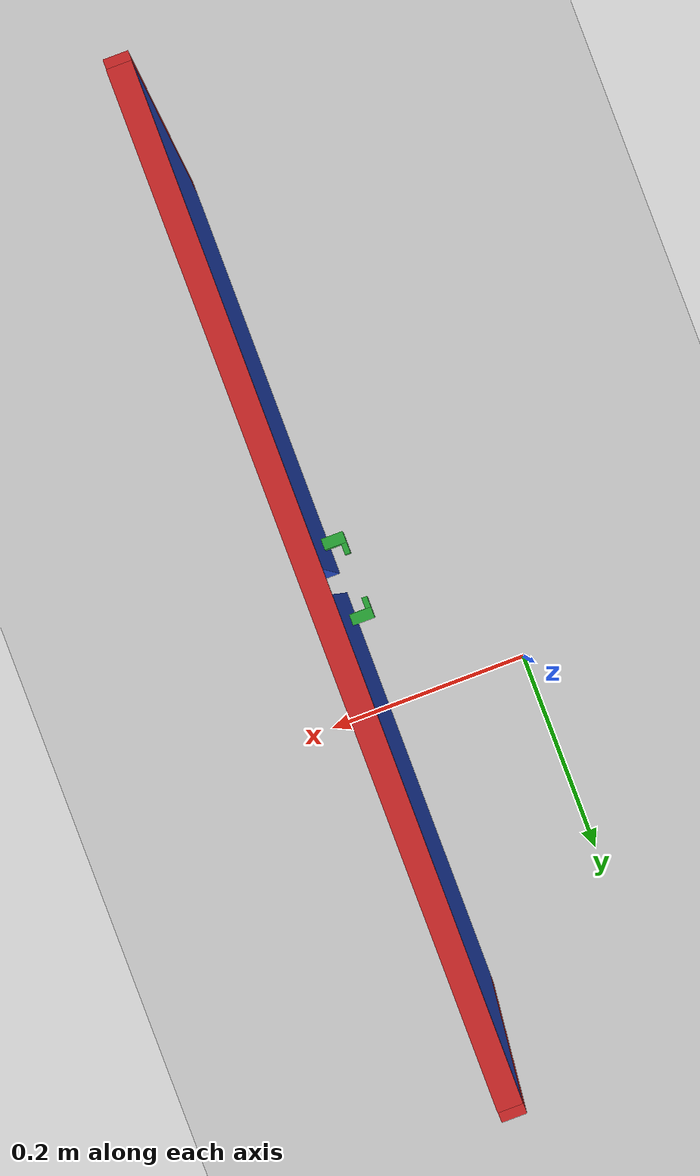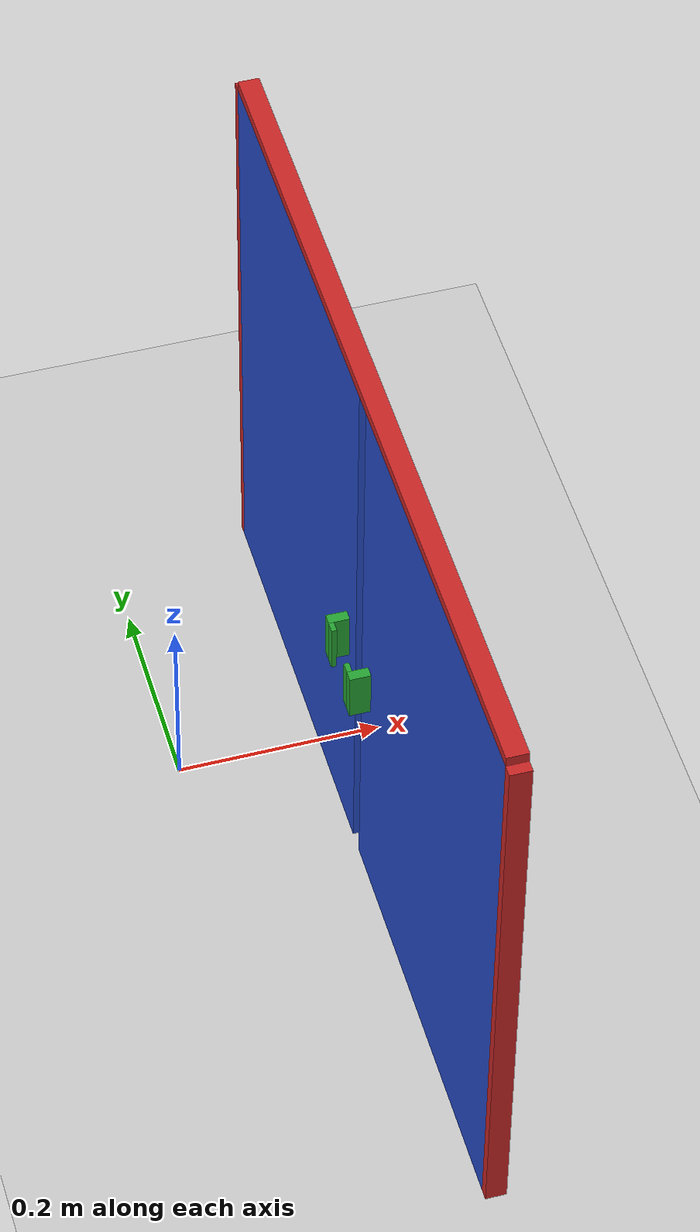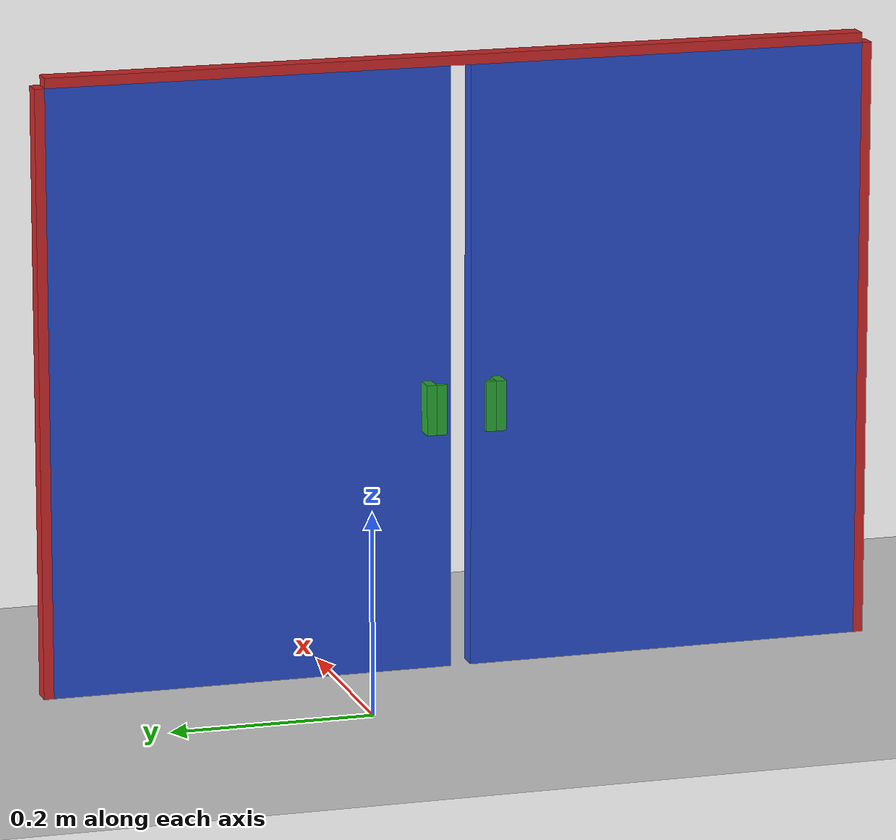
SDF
<sdf version="1.4">
 <world name="default">
  <light name="sun" type="directional">
   <pose>0.000000 0.000000 10.000000 0.000000 0.000000 0.000000</pose>
   <diffuse>0.800000 0.800000 0.800000 1.000000</diffuse>
   <specular>0.100000 0.100000 0.100000 1.000000</specular>
   <attenuation>
    <range>1000.000000</range>
    <constant>0.900000</constant>
    <linear>0.010000</linear>
    <quadratic>0.001000</quadratic>
   </attenuation>
   <direction>-0.500000 0.500000 -1.000000</direction>
  </light>
  <model name="ground_plane">
   <static>1</static>
   <link name="link">
    <collision name="collision">
     <geometry>
      <plane><normal>0.000000 0.000000 1.000000</normal><size>100.000000 100.000000</size></plane>
     </geometry>
     <surface><friction><ode><mu>100.000000</mu><mu2>50.000000</mu2></ode></friction></surface>
    </collision>
    <visual name="visual">
     <cast_shadows>0</cast_shadows>
     <geometry>
      <plane><normal>0.000000 0.000000 1.000000</normal><size>100.000000 100.000000</size></plane>
     </geometry>
     <material>
      <script><uri>file://media/materials/scripts/gazebo.material</uri><name>Gazebo/Grey</name></script>
     </material>
    </visual>
    <velocity_decay><linear>0.000000</linear><angular>0.000000</angular></velocity_decay>
   </link>
  </model>
  <physics type="ode">
   <max_step_size>0.001000</max_step_size>
   <real_time_factor>1.000000</real_time_factor>
   <real_time_update_rate>1000.000000</real_time_update_rate>
   <gravity>0.000000 0.000000 -9.800000</gravity>
  </physics>
  <scene>
   <ambient>0.200000 0.200000 0.200000 1.000000</ambient>
   <background>0.700000 0.700000 0.700000 1.000000</background>
   <shadows>1</shadows>
  </scene>
  <model name="my_doubleDoor">
   <link name="door_1">
    <pose>0.000000 -0.210000 0.300000 0.000000 0.000000 0.000000</pose>
    <inertial>
     <mass>0.020000</mass>
     <inertia>
      <ixx>1.000000</ixx>
      <ixy>0.000000</ixy>
      <ixz>0.000000</ixz>
      <iyy>1.000000</iyy>
      <iyz>0.000000</iyz>
      <izz>1.000000</izz>
     </inertia>
    </inertial>
    <visual name="vis_door_1">
     <geometry><box><size>0.020000 0.400000 0.600000</size></box></geometry>
     <material>
      <script><uri>file://media/materials/scripts/gazebo.material</uri><name>Gazebo/Blue</name></script>
     </material>
    </visual>
    <collision name="col_door_1">
     <geometry><box><size>0.020000 0.400000 0.600000</size></box></geometry>
    </collision>
    <visual name="vis_handle_1">
     <pose>0.020000 0.175000 -0.035000 0.000000 0.000000 0.000000</pose>
     <geometry><box><size>0.020000 0.010000 0.050000</size></box></geometry>
     <material>
      <script><uri>file://media/materials/scripts/gazebo.material</uri><name>Gazebo/Green</name></script>
     </material>
    </visual>
    <collision name="col_handle_1">
     <pose>0.020000 0.175000 -0.035000 0.000000 0.000000 0.000000</pose>
     <geometry><box><size>0.020000 0.010000 0.050000</size></box></geometry>
    </collision>
    <visual name="vis_handle_ext_1">
     <pose>0.027500 0.185000 -0.035000 0.000000 0.000000 0.000000</pose>
     <geometry><box><size>0.005000 0.010000 0.050000</size></box></geometry>
     <material>
      <script><uri>file://media/materials/scripts/gazebo.material</uri><name>Gazebo/Green</name></script>
     </material>
    </visual>
    <collision name="col_handle_ext_1">
     <pose>0.027500 0.185000 -0.035000 0.000000 0.000000 0.000000</pose>
     <geometry><box><size>0.005000 0.010000 0.050000</size></box></geometry>
    </collision>
    <velocity_decay><linear>0.000000</linear><angular>0.000000</angular></velocity_decay>
   </link>
   <link name="door_2">
    <pose>0.000000 0.210000 0.300000 0.000000 0.000000 0.000000</pose>
    <inertial>
     <mass>0.020000</mass>
     <inertia>
      <ixx>1.000000</ixx>
      <ixy>0.000000</ixy>
      <ixz>0.000000</ixz>
      <iyy>1.000000</iyy>
      <iyz>0.000000</iyz>
      <izz>1.000000</izz>
     </inertia>
    </inertial>
    <visual name="vis_door_2">
     <geometry><box><size>0.020000 0.400000 0.600000</size></box></geometry>
     <material>
      <script><uri>file://media/materials/scripts/gazebo.material</uri><name>Gazebo/Blue</name></script>
     </material>
    </visual>
    <collision name="col_door_2">
     <geometry><box><size>0.020000 0.400000 0.600000</size></box></geometry>
    </collision>
    <visual name="vis_handle_2">
     <pose>0.020000 -0.175000 -0.035000 0.000000 0.000000 0.000000</pose>
     <geometry><box><size>0.020000 0.010000 0.050000</size></box></geometry>
     <material>
      <script><uri>file://media/materials/scripts/gazebo.material</uri><name>Gazebo/Green</name></script>
     </material>
    </visual>
    <collision name="col_handle_2">
     <pose>0.020000 -0.175000 -0.035000 0.000000 0.000000 0.000000</pose>
     <geometry><box><size>0.020000 0.010000 0.050000</size></box></geometry>
    </collision>
    <visual name="vis_handle_ext_2">
     <pose>0.027500 -0.185000 -0.035000 0.000000 0.000000 0.000000</pose>
     <geometry><box><size>0.005000 0.010000 0.050000</size></box></geometry>
     <material>
      <script><uri>file://media/materials/scripts/gazebo.material</uri><name>Gazebo/Green</name></script>
     </material>
    </visual>
    <collision name="col_handle_ext_2">
     <pose>0.027500 -0.185000 -0.035000 0.000000 0.000000 0.000000</pose>
     <geometry><box><size>0.005000 0.010000 0.050000</size></box></geometry>
    </collision>
    <velocity_decay><linear>0.000000</linear><angular>0.000000</angular></velocity_decay>
   </link>
   <link name="hindge">
    <inertial>
     <mass>250.000000</mass>
     <inertia>
      <ixx>1.000000</ixx>
      <ixy>0.000000</ixy>
      <ixz>0.000000</ixz>
      <iyy>1.000000</iyy>
      <iyz>0.000000</iyz>
      <izz>1.000000</izz>
     </inertia>
    </inertial>
    <visual name="vis_hindge">
     <pose>0.000000 -0.415000 0.300000 0.000000 0.000000 0.000000</pose>
     <geometry><box><size>0.020000 0.010000 0.600000</size></box></geometry>
     <material>
      <script><uri>file://media/materials/scripts/gazebo.material</uri><name>Gazebo/Red</name></script>
     </material>
    </visual>
    <collision name="col_hindge">
     <pose>0.000000 -0.415000 0.300000 0.000000 0.000000 0.000000</pose>
     <geometry><box><size>0.020000 0.010000 0.600000</size></box></geometry>
    </collision>
    <visual name="vis_hindge_rightFrame">
     <pose>0.000000 0.415000 0.300000 0.000000 0.000000 0.000000</pose>
     <geometry><box><size>0.020000 0.010000 0.600000</size></box></geometry>
     <material>
      <script><uri>file://media/materials/scripts/gazebo.material</uri><name>Gazebo/Red</name></script>
     </material>
    </visual>
    <collision name="col_hindge_rightFrame">
     <pose>0.000000 0.415000 0.300000 0.000000 0.000000 0.000000</pose>
     <geometry><box><size>0.020000 0.010000 0.600000</size></box></geometry>
    </collision>
    <visual name="vis_hindge_upperFrame">
     <pose>0.000000 0.000000 0.605000 0.000000 0.000000 0.000000</pose>
     <geometry><box><size>0.020000 0.820000 0.010000</size></box></geometry>
     <material>
      <script><uri>file://media/materials/scripts/gazebo.material</uri><name>Gazebo/Red</name></script>
     </material>
    </visual>
    <collision name="col_hindge_upperFrame">
     <pose>0.000000 0.000000 0.610000 0.000000 0.000000 0.000000</pose>
     <geometry><box><size>0.020000 0.830000 0.010000</size></box></geometry>
    </collision>
    <velocity_decay><linear>0.000000</linear><angular>0.000000</angular></velocity_decay>
   </link>
   <joint name="upper_rightJoint" type="revolute">
    <parent>hindge</parent>
    <child>door_1</child>
    <pose>0.005000 -0.200000 0.000000 0.000000 0.000000 0.000000</pose>
    <axis>
     <xyz>0.000000 0.000000 1.000000</xyz>
     <limit><lower>-0.010000</lower><upper>3.140000</upper></limit>
    </axis>
   </joint>
   <joint name="upper_leftJoint" type="revolute">
    <parent>hindge</parent>
    <child>door_2</child>
    <pose>0.005000 0.200000 0.000000 3.140000 0.000000 0.000000</pose>
    <axis>
     <xyz>0.000000 0.000000 1.000000</xyz>
     <limit><lower>-3.140000</lower><upper>0.040000</upper></limit>
    </axis>
   </joint>
   <pose>0.15 -0.1300 0.000000 0.000000 0.000000 3.14</pose>
   <static>0</static>
  </model>
 </world>
</sdf>
